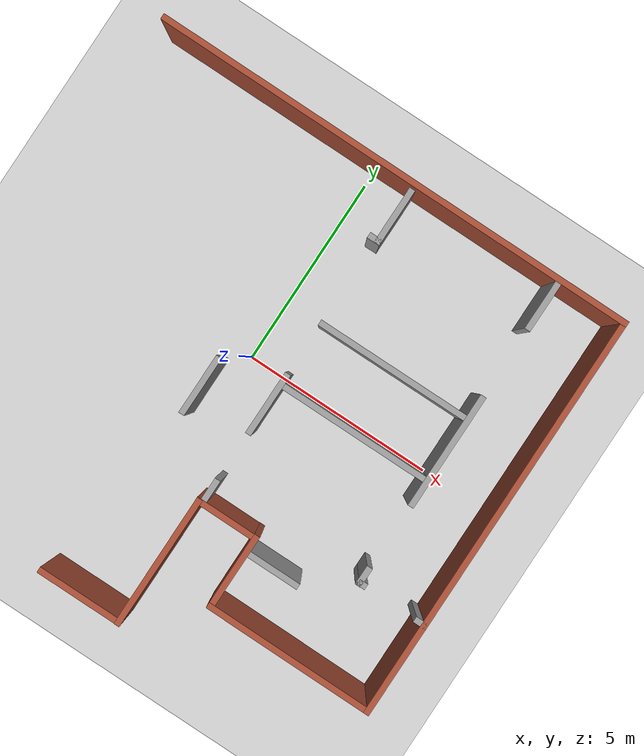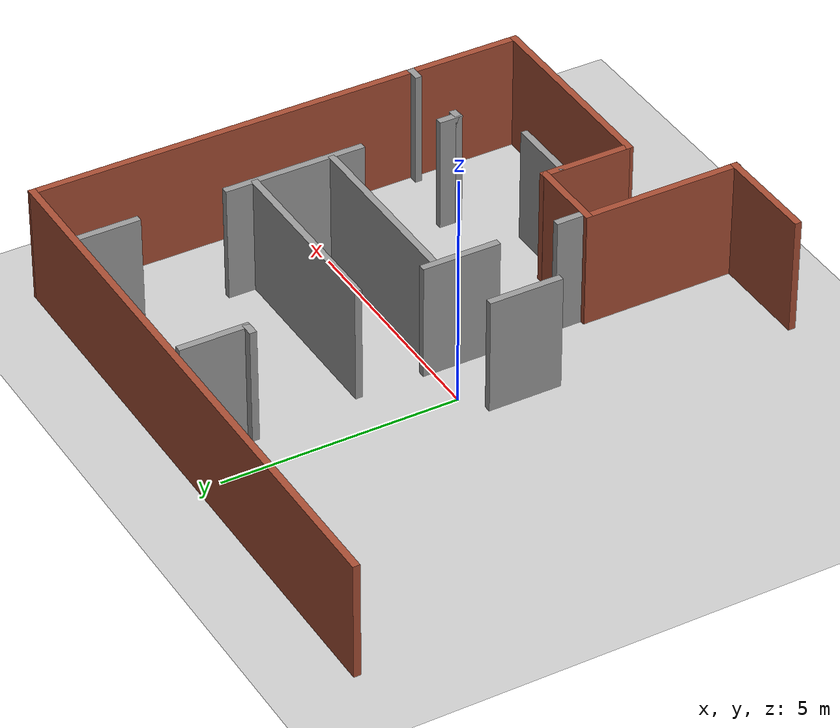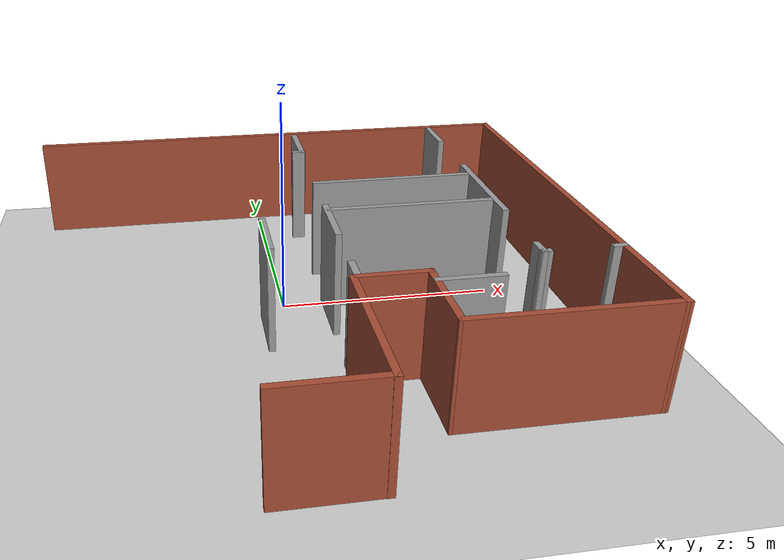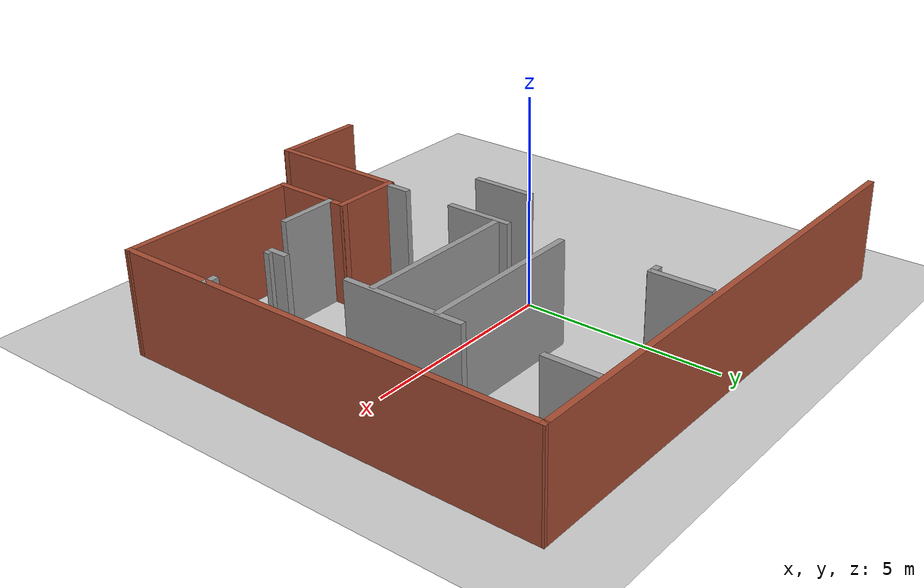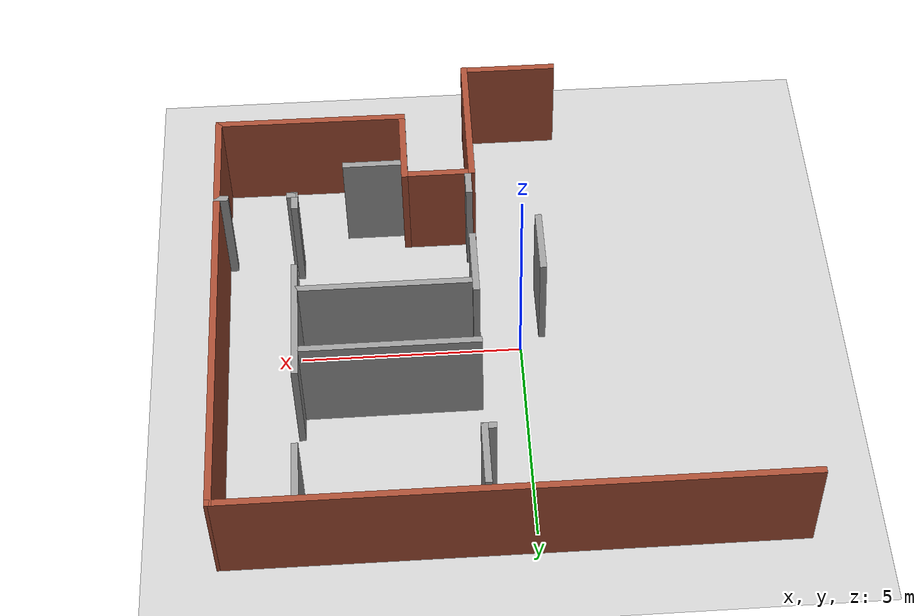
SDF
<sdf version="1.7">
 <world name="default">
  <model name="ground_plane">
   <static>1</static>
   <link name="link">
    <collision name="collision">
     <geometry><plane><normal>0 0 1</normal><size>100 100</size></plane></geometry>
     <surface>
      <contact><collide_bitmask>65535</collide_bitmask></contact>
      <friction><ode><mu>100</mu><mu2>50</mu2></ode></friction>
     </surface>
    </collision>
    <visual name="visual">
     <cast_shadows>0</cast_shadows>
     <geometry><plane><normal>0 0 1</normal><size>100 100</size></plane></geometry>
     <material>
      <script><uri>file://media/materials/scripts/gazebo.material</uri><name>Gazebo/Grey</name></script>
     </material>
    </visual>
   </link>
  </model>
  <model name="Building_2">
   <link name="Wall_0">
    <pose>0.975539 -4.38291 0 0 0 -1.5708</pose>
    <inertial>
     <inertia><ixx>0</ixx><ixy>0</ixy><ixz>0</ixz><iyy>0</iyy><iyz>0</iyz><izz>0</izz></inertia>
     <mass>0</mass>
    </inertial>
    <visual name="Wall_0_Visual">
     <pose>0 0 1.25 0 -0 0</pose>
     <geometry><box><size>3.44775 0.15 2.5</size></box></geometry>
     <material>
      <script><uri>file://media/materials/scripts/gazebo.material</uri><name>Gazebo/Bricks</name></script>
      <ambient>1 1 1 1</ambient>
      <shader type="pixel"/>
     </material>
     <meta><layer>0</layer></meta>
    </visual>
    <collision name="Wall_0_Collision">
     <pose>0 0 1.25 0 -0 0</pose>
     <geometry><box><size>3.44775 0.15 2.5</size></box></geometry>
     <surface>
      <friction>
       <ode><mu>1</mu><mu2>1</mu2><fdir1>0 0 0</fdir1><slip1>0</slip1><slip2>0</slip2></ode>
       <torsional>
        <coefficient>1</coefficient>
        <patch_radius>0</patch_radius>
        <surface_radius>0</surface_radius>
        <use_patch_radius>1</use_patch_radius>
        <ode><slip>0</slip></ode>
       </torsional>
      </friction>
      <bounce><restitution_coefficient>0</restitution_coefficient><threshold>1e+06</threshold></bounce>
      <contact>
       <collide_without_contact>0</collide_without_contact>
       <collide_without_contact_bitmask>1</collide_without_contact_bitmask>
       <collide_bitmask>1</collide_bitmask>
       <ode>
        <soft_cfm>0</soft_cfm>
        <soft_erp>0.2</soft_erp>
        <kp>1e+13</kp>
        <kd>1</kd>
        <max_vel>0.01</max_vel>
        <min_depth>0</min_depth>
       </ode>
       <bullet>
        <split_impulse>1</split_impulse>
        <split_impulse_penetration_threshold>-0.01</split_impulse_penetration_threshold>
        <soft_cfm>0</soft_cfm>
        <soft_erp>0.2</soft_erp>
        <kp>1e+13</kp>
        <kd>1</kd>
       </bullet>
      </contact>
     </surface>
    </collision>
   </link>
   <link name="Wall_1">
    <pose>-0.074462 -6.02302 0 0 -0 3.14159</pose>
    <visual name="Wall_1_Visual">
     <pose>0 0 1.25 0 -0 0</pose>
     <geometry><box><size>2.25 0.15 2.5</size></box></geometry>
     <material>
      <script><uri>file://media/materials/scripts/gazebo.material</uri><name>Gazebo/Bricks</name></script>
      <ambient>1 1 1 1</ambient>
      <shader type="pixel"/>
     </material>
     <meta><layer>0</layer></meta>
    </visual>
    <collision name="Wall_1_Collision">
     <pose>0 0 1.25 0 -0 0</pose>
     <geometry><box><size>2.25 0.15 2.5</size></box></geometry>
     <surface>
      <friction>
       <ode><mu>1</mu><mu2>1</mu2><fdir1>0 0 0</fdir1><slip1>0</slip1><slip2>0</slip2></ode>
       <torsional>
        <coefficient>1</coefficient>
        <patch_radius>0</patch_radius>
        <surface_radius>0</surface_radius>
        <use_patch_radius>1</use_patch_radius>
        <ode><slip>0</slip></ode>
       </torsional>
      </friction>
      <bounce><restitution_coefficient>0</restitution_coefficient><threshold>1e+06</threshold></bounce>
      <contact>
       <collide_without_contact>0</collide_without_contact>
       <collide_without_contact_bitmask>1</collide_without_contact_bitmask>
       <collide_bitmask>1</collide_bitmask>
       <ode>
        <soft_cfm>0</soft_cfm>
        <soft_erp>0.2</soft_erp>
        <kp>1e+13</kp>
        <kd>1</kd>
        <max_vel>0.01</max_vel>
        <min_depth>0</min_depth>
       </ode>
       <bullet>
        <split_impulse>1</split_impulse>
        <split_impulse_penetration_threshold>-0.01</split_impulse_penetration_threshold>
        <soft_cfm>0</soft_cfm>
        <soft_erp>0.2</soft_erp>
        <kp>1e+13</kp>
        <kd>1</kd>
       </bullet>
      </contact>
     </surface>
    </collision>
   </link>
   <link name="Wall_11">
    <pose>0.54984 6.01575 0 0 0 -0.001465</pose>
    <visual name="Wall_11_Visual">
     <pose>0 0 1.25 0 -0 0</pose>
     <geometry><box><size>12.6986 0.15 2.5</size></box></geometry>
     <material>
      <script><uri>file://media/materials/scripts/gazebo.material</uri><name>Gazebo/Bricks</name></script>
      <ambient>1 1 1 1</ambient>
      <shader type="pixel"/>
     </material>
     <meta><layer>0</layer></meta>
    </visual>
    <collision name="Wall_11_Collision">
     <pose>0 0 1.25 0 -0 0</pose>
     <geometry><box><size>12.6986 0.15 2.5</size></box></geometry>
     <surface>
      <friction>
       <ode><mu>1</mu><mu2>1</mu2><fdir1>0 0 0</fdir1><slip1>0</slip1><slip2>0</slip2></ode>
       <torsional>
        <coefficient>1</coefficient>
        <patch_radius>0</patch_radius>
        <surface_radius>0</surface_radius>
        <use_patch_radius>1</use_patch_radius>
        <ode><slip>0</slip></ode>
       </torsional>
      </friction>
      <bounce><restitution_coefficient>0</restitution_coefficient><threshold>1e+06</threshold></bounce>
      <contact>
       <collide_without_contact>0</collide_without_contact>
       <collide_without_contact_bitmask>1</collide_without_contact_bitmask>
       <collide_bitmask>1</collide_bitmask>
       <ode>
        <soft_cfm>0</soft_cfm>
        <soft_erp>0.2</soft_erp>
        <kp>1e+13</kp>
        <kd>1</kd>
        <max_vel>0.01</max_vel>
        <min_depth>0</min_depth>
       </ode>
       <bullet>
        <split_impulse>1</split_impulse>
        <split_impulse_penetration_threshold>-0.01</split_impulse_penetration_threshold>
        <soft_cfm>0</soft_cfm>
        <soft_erp>0.2</soft_erp>
        <kp>1e+13</kp>
        <kd>1</kd>
       </bullet>
      </contact>
     </surface>
    </collision>
   </link>
   <link name="Wall_14">
    <pose>6.82414 0.706559 0 0 0 -1.5708</pose>
    <visual name="Wall_14_Visual">
     <pose>0 0 1.25 0 -0 0</pose>
     <geometry><box><size>10.75 0.15 2.5</size></box></geometry>
     <material>
      <script><uri>file://media/materials/scripts/gazebo.material</uri><name>Gazebo/Bricks</name></script>
      <ambient>1 1 1 1</ambient>
      <shader type="pixel"/>
     </material>
     <meta><layer>0</layer></meta>
    </visual>
    <collision name="Wall_14_Collision">
     <pose>0 0 1.25 0 -0 0</pose>
     <geometry><box><size>10.75 0.15 2.5</size></box></geometry>
     <surface>
      <friction>
       <ode><mu>1</mu><mu2>1</mu2><fdir1>0 0 0</fdir1><slip1>0</slip1><slip2>0</slip2></ode>
       <torsional>
        <coefficient>1</coefficient>
        <patch_radius>0</patch_radius>
        <surface_radius>0</surface_radius>
        <use_patch_radius>1</use_patch_radius>
        <ode><slip>0</slip></ode>
       </torsional>
      </friction>
      <bounce><restitution_coefficient>0</restitution_coefficient><threshold>1e+06</threshold></bounce>
      <contact>
       <collide_without_contact>0</collide_without_contact>
       <collide_without_contact_bitmask>1</collide_without_contact_bitmask>
       <collide_bitmask>1</collide_bitmask>
       <ode>
        <soft_cfm>0</soft_cfm>
        <soft_erp>0.2</soft_erp>
        <kp>1e+13</kp>
        <kd>1</kd>
        <max_vel>0.01</max_vel>
        <min_depth>0</min_depth>
       </ode>
       <bullet>
        <split_impulse>1</split_impulse>
        <split_impulse_penetration_threshold>-0.01</split_impulse_penetration_threshold>
        <soft_cfm>0</soft_cfm>
        <soft_erp>0.2</soft_erp>
        <kp>1e+13</kp>
        <kd>1</kd>
       </bullet>
      </contact>
     </surface>
    </collision>
   </link>
   <link name="Wall_15">
    <pose>4.67484 -4.58425 0 0 -0 3.13732</pose>
    <visual name="Wall_15_Visual">
     <pose>0 0 1.25 0 -0 0</pose>
     <geometry><box><size>4.44864 0.15 2.5</size></box></geometry>
     <material>
      <script><uri>file://media/materials/scripts/gazebo.material</uri><name>Gazebo/Bricks</name></script>
      <ambient>1 1 1 1</ambient>
      <shader type="pixel"/>
     </material>
     <meta><layer>0</layer></meta>
    </visual>
    <collision name="Wall_15_Collision">
     <pose>0 0 1.25 0 -0 0</pose>
     <geometry><box><size>4.44864 0.15 2.5</size></box></geometry>
     <surface>
      <friction>
       <ode><mu>1</mu><mu2>1</mu2><fdir1>0 0 0</fdir1><slip1>0</slip1><slip2>0</slip2></ode>
       <torsional>
        <coefficient>1</coefficient>
        <patch_radius>0</patch_radius>
        <surface_radius>0</surface_radius>
        <use_patch_radius>1</use_patch_radius>
        <ode><slip>0</slip></ode>
       </torsional>
      </friction>
      <bounce><restitution_coefficient>0</restitution_coefficient><threshold>1e+06</threshold></bounce>
      <contact>
       <collide_without_contact>0</collide_without_contact>
       <collide_without_contact_bitmask>1</collide_without_contact_bitmask>
       <collide_bitmask>1</collide_bitmask>
       <ode>
        <soft_cfm>0</soft_cfm>
        <soft_erp>0.2</soft_erp>
        <kp>1e+13</kp>
        <kd>1</kd>
        <max_vel>0.01</max_vel>
        <min_depth>0</min_depth>
       </ode>
       <bullet>
        <split_impulse>1</split_impulse>
        <split_impulse_penetration_threshold>-0.01</split_impulse_penetration_threshold>
        <soft_cfm>0</soft_cfm>
        <soft_erp>0.2</soft_erp>
        <kp>1e+13</kp>
        <kd>1</kd>
       </bullet>
      </contact>
     </surface>
    </collision>
   </link>
   <link name="Wall_16">
    <pose>2.52554 -3.64508 0 0 -0 1.5708</pose>
    <visual name="Wall_16_Visual">
     <pose>0 0 1.25 0 -0 0</pose>
     <geometry><box><size>2.00994 0.15 2.5</size></box></geometry>
     <material>
      <script><uri>file://media/materials/scripts/gazebo.material</uri><name>Gazebo/Bricks</name></script>
      <ambient>1 1 1 1</ambient>
      <shader type="pixel"/>
     </material>
     <meta><layer>0</layer></meta>
    </visual>
    <collision name="Wall_16_Collision">
     <pose>0 0 1.25 0 -0 0</pose>
     <geometry><box><size>2.00994 0.15 2.5</size></box></geometry>
     <surface>
      <friction>
       <ode><mu>1</mu><mu2>1</mu2><fdir1>0 0 0</fdir1><slip1>0</slip1><slip2>0</slip2></ode>
       <torsional>
        <coefficient>1</coefficient>
        <patch_radius>0</patch_radius>
        <surface_radius>0</surface_radius>
        <use_patch_radius>1</use_patch_radius>
        <ode><slip>0</slip></ode>
       </torsional>
      </friction>
      <bounce><restitution_coefficient>0</restitution_coefficient><threshold>1e+06</threshold></bounce>
      <contact>
       <collide_without_contact>0</collide_without_contact>
       <collide_without_contact_bitmask>1</collide_without_contact_bitmask>
       <collide_bitmask>1</collide_bitmask>
       <ode>
        <soft_cfm>0</soft_cfm>
        <soft_erp>0.2</soft_erp>
        <kp>1e+13</kp>
        <kd>1</kd>
        <max_vel>0.01</max_vel>
        <min_depth>0</min_depth>
       </ode>
       <bullet>
        <split_impulse>1</split_impulse>
        <split_impulse_penetration_threshold>-0.01</split_impulse_penetration_threshold>
        <soft_cfm>0</soft_cfm>
        <soft_erp>0.2</soft_erp>
        <kp>1e+13</kp>
        <kd>1</kd>
       </bullet>
      </contact>
     </surface>
    </collision>
   </link>
   <link name="Wall_17">
    <pose>1.75059 -2.71926 0 0 -0 3.14053</pose>
    <visual name="Wall_17_Visual">
     <pose>0 0 1.25 0 -0 0</pose>
     <geometry><box><size>1.69991 0.15 2.5</size></box></geometry>
     <material>
      <script><uri>file://media/materials/scripts/gazebo.material</uri><name>Gazebo/Bricks</name></script>
      <ambient>1 1 1 1</ambient>
      <shader type="pixel"/>
     </material>
     <meta><layer>0</layer></meta>
    </visual>
    <collision name="Wall_17_Collision">
     <pose>0 0 1.25 0 -0 0</pose>
     <geometry><box><size>1.69991 0.15 2.5</size></box></geometry>
     <surface>
      <friction>
       <ode><mu>1</mu><mu2>1</mu2><fdir1>0 0 0</fdir1><slip1>0</slip1><slip2>0</slip2></ode>
       <torsional>
        <coefficient>1</coefficient>
        <patch_radius>0</patch_radius>
        <surface_radius>0</surface_radius>
        <use_patch_radius>1</use_patch_radius>
        <ode><slip>0</slip></ode>
       </torsional>
      </friction>
      <bounce><restitution_coefficient>0</restitution_coefficient><threshold>1e+06</threshold></bounce>
      <contact>
       <collide_without_contact>0</collide_without_contact>
       <collide_without_contact_bitmask>1</collide_without_contact_bitmask>
       <collide_bitmask>1</collide_bitmask>
       <ode>
        <soft_cfm>0</soft_cfm>
        <soft_erp>0.2</soft_erp>
        <kp>1e+13</kp>
        <kd>1</kd>
        <max_vel>0.01</max_vel>
        <min_depth>0</min_depth>
       </ode>
       <bullet>
        <split_impulse>1</split_impulse>
        <split_impulse_penetration_threshold>-0.01</split_impulse_penetration_threshold>
        <soft_cfm>0</soft_cfm>
        <soft_erp>0.2</soft_erp>
        <kp>1e+13</kp>
        <kd>1</kd>
       </bullet>
      </contact>
     </surface>
    </collision>
   </link>
   <link name="Wall_33">
    <pose>-0.445665 -0.504153 0 0 0 -1.5708</pose>
    <inertial>
     <inertia><ixx>0</ixx><ixy>0</ixy><ixz>0</ixz><iyy>0</iyy><iyz>0</iyz><izz>0</izz></inertia>
     <mass>0</mass>
    </inertial>
    <visual name="Wall_33_Visual">
     <pose>0 0 1.25 0 -0 0</pose>
     <geometry><box><size>1.56049 0.15 2.5</size></box></geometry>
     <material>
      <script><uri>file://media/materials/scripts/gazebo.material</uri><name>Gazebo/Grey</name></script>
      <ambient>1 1 1 1</ambient>
      <shader type="pixel"/>
     </material>
     <meta><layer>0</layer></meta>
    </visual>
    <collision name="Wall_33_Collision">
     <pose>0 0 1.25 0 -0 0</pose>
     <geometry><box><size>1.56049 0.15 2.5</size></box></geometry>
     <surface>
      <friction>
       <ode><mu>1</mu><mu2>1</mu2><fdir1>0 0 0</fdir1><slip1>0</slip1><slip2>0</slip2></ode>
       <torsional>
        <coefficient>1</coefficient>
        <patch_radius>0</patch_radius>
        <surface_radius>0</surface_radius>
        <use_patch_radius>1</use_patch_radius>
        <ode><slip>0</slip></ode>
       </torsional>
      </friction>
      <bounce><restitution_coefficient>0</restitution_coefficient><threshold>1e+06</threshold></bounce>
      <contact>
       <collide_without_contact>0</collide_without_contact>
       <collide_without_contact_bitmask>1</collide_without_contact_bitmask>
       <collide_bitmask>1</collide_bitmask>
       <ode>
        <soft_cfm>0</soft_cfm>
        <soft_erp>0.2</soft_erp>
        <kp>1e+13</kp>
        <kd>1</kd>
        <max_vel>0.01</max_vel>
        <min_depth>0</min_depth>
       </ode>
       <bullet>
        <split_impulse>1</split_impulse>
        <split_impulse_penetration_threshold>-0.01</split_impulse_penetration_threshold>
        <soft_cfm>0</soft_cfm>
        <soft_erp>0.2</soft_erp>
        <kp>1e+13</kp>
        <kd>1</kd>
       </bullet>
      </contact>
     </surface>
    </collision>
   </link>
   <link name="Wall_56">
    <pose>1.11993 5.13763 0 0 0 -1.5708</pose>
    <inertial>
     <inertia><ixx>0</ixx><ixy>0</ixy><ixz>0</ixz><iyy>0</iyy><iyz>0</iyz><izz>0</izz></inertia>
     <mass>0</mass>
    </inertial>
    <visual name="Wall_56_Visual">
     <pose>0 0 1.25 0 -0 0</pose>
     <geometry><box><size>1.48421 0.15 2.5</size></box></geometry>
     <material>
      <script><uri>file://media/materials/scripts/gazebo.material</uri><name>Gazebo/Grey</name></script>
      <ambient>1 1 1 1</ambient>
      <shader type="pixel"/>
     </material>
     <meta><layer>0</layer></meta>
    </visual>
    <collision name="Wall_56_Collision">
     <pose>0 0 1.25 0 -0 0</pose>
     <geometry><box><size>1.48421 0.15 2.5</size></box></geometry>
     <surface>
      <friction>
       <ode><mu>1</mu><mu2>1</mu2><fdir1>0 0 0</fdir1><slip1>0</slip1><slip2>0</slip2></ode>
       <torsional>
        <coefficient>1</coefficient>
        <patch_radius>0</patch_radius>
        <surface_radius>0</surface_radius>
        <use_patch_radius>1</use_patch_radius>
        <ode><slip>0</slip></ode>
       </torsional>
      </friction>
      <bounce><restitution_coefficient>0</restitution_coefficient><threshold>1e+06</threshold></bounce>
      <contact>
       <collide_without_contact>0</collide_without_contact>
       <collide_without_contact_bitmask>1</collide_without_contact_bitmask>
       <collide_bitmask>1</collide_bitmask>
       <ode>
        <soft_cfm>0</soft_cfm>
        <soft_erp>0.2</soft_erp>
        <kp>1e+13</kp>
        <kd>1</kd>
        <max_vel>0.01</max_vel>
        <min_depth>0</min_depth>
       </ode>
       <bullet>
        <split_impulse>1</split_impulse>
        <split_impulse_penetration_threshold>-0.01</split_impulse_penetration_threshold>
        <soft_cfm>0</soft_cfm>
        <soft_erp>0.2</soft_erp>
        <kp>1e+13</kp>
        <kd>1</kd>
       </bullet>
      </contact>
     </surface>
    </collision>
   </link>
   <link name="Wall_60">
    <pose>1.02699 4.46378 0 0 -0 3.14159</pose>
    <visual name="Wall_60_Visual">
     <pose>0 0 1.25 0 -0 0</pose>
     <geometry><box><size>0.32984 0.15 2.5</size></box></geometry>
     <material>
      <script><uri>file://media/materials/scripts/gazebo.material</uri><name>Gazebo/Grey</name></script>
      <ambient>1 1 1 1</ambient>
      <shader type="pixel"/>
     </material>
     <meta><layer>0</layer></meta>
    </visual>
    <collision name="Wall_60_Collision">
     <pose>0 0 1.25 0 -0 0</pose>
     <geometry><box><size>0.32984 0.15 2.5</size></box></geometry>
     <surface>
      <friction>
       <ode><mu>1</mu><mu2>1</mu2><fdir1>0 0 0</fdir1><slip1>0</slip1><slip2>0</slip2></ode>
       <torsional>
        <coefficient>1</coefficient>
        <patch_radius>0</patch_radius>
        <surface_radius>0</surface_radius>
        <use_patch_radius>1</use_patch_radius>
        <ode><slip>0</slip></ode>
       </torsional>
      </friction>
      <bounce><restitution_coefficient>0</restitution_coefficient><threshold>1e+06</threshold></bounce>
      <contact>
       <collide_without_contact>0</collide_without_contact>
       <collide_without_contact_bitmask>1</collide_without_contact_bitmask>
       <collide_bitmask>1</collide_bitmask>
       <ode>
        <soft_cfm>0</soft_cfm>
        <soft_erp>0.2</soft_erp>
        <kp>1e+13</kp>
        <kd>1</kd>
        <max_vel>0.01</max_vel>
        <min_depth>0</min_depth>
       </ode>
       <bullet>
        <split_impulse>1</split_impulse>
        <split_impulse_penetration_threshold>-0.01</split_impulse_penetration_threshold>
        <soft_cfm>0</soft_cfm>
        <soft_erp>0.2</soft_erp>
        <kp>1e+13</kp>
        <kd>1</kd>
       </bullet>
      </contact>
     </surface>
    </collision>
   </link>
   <link name="Wall_66">
    <pose>1.07407 -0.005905 0 0 0 -1.5708</pose>
    <inertial>
     <inertia><ixx>0</ixx><ixy>0</ixy><ixz>0</ixz><iyy>0</iyy><iyz>0</iyz><izz>0</izz></inertia>
     <mass>0</mass>
    </inertial>
    <visual name="Wall_66_Visual">
     <pose>0 0 1.25 0 -0 0</pose>
     <geometry><box><size>1.65535 0.15 2.5</size></box></geometry>
     <material>
      <script><uri>file://media/materials/scripts/gazebo.material</uri><name>Gazebo/Grey</name></script>
      <ambient>1 1 1 1</ambient>
      <shader type="pixel"/>
     </material>
     <meta><layer>0</layer></meta>
    </visual>
    <collision name="Wall_66_Collision">
     <pose>0 0 1.25 0 -0 0</pose>
     <geometry><box><size>1.65535 0.15 2.5</size></box></geometry>
     <surface>
      <friction>
       <ode><mu>1</mu><mu2>1</mu2><fdir1>0 0 0</fdir1><slip1>0</slip1><slip2>0</slip2></ode>
       <torsional>
        <coefficient>1</coefficient>
        <patch_radius>0</patch_radius>
        <surface_radius>0</surface_radius>
        <use_patch_radius>1</use_patch_radius>
        <ode><slip>0</slip></ode>
       </torsional>
      </friction>
      <bounce><restitution_coefficient>0</restitution_coefficient><threshold>1e+06</threshold></bounce>
      <contact>
       <collide_without_contact>0</collide_without_contact>
       <collide_without_contact_bitmask>1</collide_without_contact_bitmask>
       <collide_bitmask>1</collide_bitmask>
       <ode>
        <soft_cfm>0</soft_cfm>
        <soft_erp>0.2</soft_erp>
        <kp>1e+13</kp>
        <kd>1</kd>
        <max_vel>0.01</max_vel>
        <min_depth>0</min_depth>
       </ode>
       <bullet>
        <split_impulse>1</split_impulse>
        <split_impulse_penetration_threshold>-0.01</split_impulse_penetration_threshold>
        <soft_cfm>0</soft_cfm>
        <soft_erp>0.2</soft_erp>
        <kp>1e+13</kp>
        <kd>1</kd>
       </bullet>
      </contact>
     </surface>
    </collision>
   </link>
   <link name="Wall_74">
    <pose>1.07029 -2.36085 0 0 0 -1.5708</pose>
    <inertial>
     <inertia><ixx>0</ixx><ixy>0</ixy><ixz>0</ixz><iyy>0</iyy><iyz>0</iyz><izz>0</izz></inertia>
     <mass>0</mass>
    </inertial>
    <visual name="Wall_74_Visual">
     <pose>0 0 1.25 0 -0 0</pose>
     <geometry><box><size>0.57988 0.15 2.5</size></box></geometry>
     <material>
      <script><uri>file://media/materials/scripts/gazebo.material</uri><name>Gazebo/Grey</name></script>
      <ambient>1 1 1 1</ambient>
      <shader type="pixel"/>
     </material>
     <meta><layer>0</layer></meta>
    </visual>
    <collision name="Wall_74_Collision">
     <pose>0 0 1.25 0 -0 0</pose>
     <geometry><box><size>0.57988 0.15 2.5</size></box></geometry>
     <surface>
      <friction>
       <ode><mu>1</mu><mu2>1</mu2><fdir1>0 0 0</fdir1><slip1>0</slip1><slip2>0</slip2></ode>
       <torsional>
        <coefficient>1</coefficient>
        <patch_radius>0</patch_radius>
        <surface_radius>0</surface_radius>
        <use_patch_radius>1</use_patch_radius>
        <ode><slip>0</slip></ode>
       </torsional>
      </friction>
      <bounce><restitution_coefficient>0</restitution_coefficient><threshold>1e+06</threshold></bounce>
      <contact>
       <collide_without_contact>0</collide_without_contact>
       <collide_without_contact_bitmask>1</collide_without_contact_bitmask>
       <collide_bitmask>1</collide_bitmask>
       <ode>
        <soft_cfm>0</soft_cfm>
        <soft_erp>0.2</soft_erp>
        <kp>1e+13</kp>
        <kd>1</kd>
        <max_vel>0.01</max_vel>
        <min_depth>0</min_depth>
       </ode>
       <bullet>
        <split_impulse>1</split_impulse>
        <split_impulse_penetration_threshold>-0.01</split_impulse_penetration_threshold>
        <soft_cfm>0</soft_cfm>
        <soft_erp>0.2</soft_erp>
        <kp>1e+13</kp>
        <kd>1</kd>
       </bullet>
      </contact>
     </surface>
    </collision>
   </link>
   <link name="Wall_76">
    <pose>5.06548 5.29174 0 0 0 -1.5708</pose>
    <inertial>
     <inertia><ixx>0</ixx><ixy>0</ixy><ixz>0</ixz><iyy>0</iyy><iyz>0</iyz><izz>0</izz></inertia>
     <mass>0</mass>
    </inertial>
    <visual name="Wall_76_Visual">
     <pose>0 0 1.25 0 -0 0</pose>
     <geometry><box><size>1.28814 0.15 2.5</size></box></geometry>
     <material>
      <script><uri>file://media/materials/scripts/gazebo.material</uri><name>Gazebo/Grey</name></script>
      <ambient>1 1 1 1</ambient>
      <shader type="pixel"/>
     </material>
     <meta><layer>0</layer></meta>
    </visual>
    <collision name="Wall_76_Collision">
     <pose>0 0 1.25 0 -0 0</pose>
     <geometry><box><size>1.28814 0.15 2.5</size></box></geometry>
     <surface>
      <friction>
       <ode><mu>1</mu><mu2>1</mu2><fdir1>0 0 0</fdir1><slip1>0</slip1><slip2>0</slip2></ode>
       <torsional>
        <coefficient>1</coefficient>
        <patch_radius>0</patch_radius>
        <surface_radius>0</surface_radius>
        <use_patch_radius>1</use_patch_radius>
        <ode><slip>0</slip></ode>
       </torsional>
      </friction>
      <bounce><restitution_coefficient>0</restitution_coefficient><threshold>1e+06</threshold></bounce>
      <contact>
       <collide_without_contact>0</collide_without_contact>
       <collide_without_contact_bitmask>1</collide_without_contact_bitmask>
       <collide_bitmask>1</collide_bitmask>
       <ode>
        <soft_cfm>0</soft_cfm>
        <soft_erp>0.2</soft_erp>
        <kp>1e+13</kp>
        <kd>1</kd>
        <max_vel>0.01</max_vel>
        <min_depth>0</min_depth>
       </ode>
       <bullet>
        <split_impulse>1</split_impulse>
        <split_impulse_penetration_threshold>-0.01</split_impulse_penetration_threshold>
        <soft_cfm>0</soft_cfm>
        <soft_erp>0.2</soft_erp>
        <kp>1e+13</kp>
        <kd>1</kd>
       </bullet>
      </contact>
     </surface>
    </collision>
   </link>
   <link name="Wall_78">
    <pose>5.06799 1.33817 0 0 0 -1.5708</pose>
    <inertial>
     <inertia><ixx>0</ixx><ixy>0</ixy><ixz>0</ixz><iyy>0</iyy><iyz>0</iyz><izz>0</izz></inertia>
     <mass>0</mass>
    </inertial>
    <visual name="Wall_78_Visual">
     <pose>0 0 1.25 0 -0 0</pose>
     <geometry><box><size>3.01399 0.15 2.5</size></box></geometry>
     <material>
      <script><uri>file://media/materials/scripts/gazebo.material</uri><name>Gazebo/Grey</name></script>
      <ambient>1 1 1 1</ambient>
      <shader type="pixel"/>
     </material>
     <meta><layer>0</layer></meta>
    </visual>
    <collision name="Wall_78_Collision">
     <pose>0 0 1.25 0 -0 0</pose>
     <geometry><box><size>3.01399 0.15 2.5</size></box></geometry>
     <surface>
      <friction>
       <ode><mu>1</mu><mu2>1</mu2><fdir1>0 0 0</fdir1><slip1>0</slip1><slip2>0</slip2></ode>
       <torsional>
        <coefficient>1</coefficient>
        <patch_radius>0</patch_radius>
        <surface_radius>0</surface_radius>
        <use_patch_radius>1</use_patch_radius>
        <ode><slip>0</slip></ode>
       </torsional>
      </friction>
      <bounce><restitution_coefficient>0</restitution_coefficient><threshold>1e+06</threshold></bounce>
      <contact>
       <collide_without_contact>0</collide_without_contact>
       <collide_without_contact_bitmask>1</collide_without_contact_bitmask>
       <collide_bitmask>1</collide_bitmask>
       <ode>
        <soft_cfm>0</soft_cfm>
        <soft_erp>0.2</soft_erp>
        <kp>1e+13</kp>
        <kd>1</kd>
        <max_vel>0.01</max_vel>
        <min_depth>0</min_depth>
       </ode>
       <bullet>
        <split_impulse>1</split_impulse>
        <split_impulse_penetration_threshold>-0.01</split_impulse_penetration_threshold>
        <soft_cfm>0</soft_cfm>
        <soft_erp>0.2</soft_erp>
        <kp>1e+13</kp>
        <kd>1</kd>
       </bullet>
      </contact>
     </surface>
    </collision>
   </link>
   <link name="Wall_85">
    <pose>3.05695 2.19305 0 0 0 -3.1394</pose>
    <visual name="Wall_85_Visual">
     <pose>0 0 1.25 0 -0 0</pose>
     <geometry><box><size>4.05699 0.15 2.5</size></box></geometry>
     <material>
      <script><uri>file://media/materials/scripts/gazebo.material</uri><name>Gazebo/Grey</name></script>
      <ambient>1 1 1 1</ambient>
      <shader type="pixel"/>
     </material>
     <meta><layer>0</layer></meta>
    </visual>
    <collision name="Wall_85_Collision">
     <pose>0 0 1.25 0 -0 0</pose>
     <geometry><box><size>4.05699 0.15 2.5</size></box></geometry>
     <surface>
      <friction>
       <ode><mu>1</mu><mu2>1</mu2><fdir1>0 0 0</fdir1><slip1>0</slip1><slip2>0</slip2></ode>
       <torsional>
        <coefficient>1</coefficient>
        <patch_radius>0</patch_radius>
        <surface_radius>0</surface_radius>
        <use_patch_radius>1</use_patch_radius>
        <ode><slip>0</slip></ode>
       </torsional>
      </friction>
      <bounce><restitution_coefficient>0</restitution_coefficient><threshold>1e+06</threshold></bounce>
      <contact>
       <collide_without_contact>0</collide_without_contact>
       <collide_without_contact_bitmask>1</collide_without_contact_bitmask>
       <collide_bitmask>1</collide_bitmask>
       <ode>
        <soft_cfm>0</soft_cfm>
        <soft_erp>0.2</soft_erp>
        <kp>1e+13</kp>
        <kd>1</kd>
        <max_vel>0.01</max_vel>
        <min_depth>0</min_depth>
       </ode>
       <bullet>
        <split_impulse>1</split_impulse>
        <split_impulse_penetration_threshold>-0.01</split_impulse_penetration_threshold>
        <soft_cfm>0</soft_cfm>
        <soft_erp>0.2</soft_erp>
        <kp>1e+13</kp>
        <kd>1</kd>
       </bullet>
      </contact>
     </surface>
    </collision>
   </link>
   <link name="Wall_87">
    <pose>3.06404 0.525185 0 0 -0 3.14159</pose>
    <visual name="Wall_87_Visual">
     <pose>0 0 1.25 0 -0 0</pose>
     <geometry><box><size>4 0.15 2.5</size></box></geometry>
     <material>
      <script><uri>file://media/materials/scripts/gazebo.material</uri><name>Gazebo/Grey</name></script>
      <ambient>1 1 1 1</ambient>
      <shader type="pixel"/>
     </material>
     <meta><layer>0</layer></meta>
    </visual>
    <collision name="Wall_87_Collision">
     <pose>0 0 1.25 0 -0 0</pose>
     <geometry><box><size>4 0.15 2.5</size></box></geometry>
     <surface>
      <friction>
       <ode><mu>1</mu><mu2>1</mu2><fdir1>0 0 0</fdir1><slip1>0</slip1><slip2>0</slip2></ode>
       <torsional>
        <coefficient>1</coefficient>
        <patch_radius>0</patch_radius>
        <surface_radius>0</surface_radius>
        <use_patch_radius>1</use_patch_radius>
        <ode><slip>0</slip></ode>
       </torsional>
      </friction>
      <bounce><restitution_coefficient>0</restitution_coefficient><threshold>1e+06</threshold></bounce>
      <contact>
       <collide_without_contact>0</collide_without_contact>
       <collide_without_contact_bitmask>1</collide_without_contact_bitmask>
       <collide_bitmask>1</collide_bitmask>
       <ode>
        <soft_cfm>0</soft_cfm>
        <soft_erp>0.2</soft_erp>
        <kp>1e+13</kp>
        <kd>1</kd>
        <max_vel>0.01</max_vel>
        <min_depth>0</min_depth>
       </ode>
       <bullet>
        <split_impulse>1</split_impulse>
        <split_impulse_penetration_threshold>-0.01</split_impulse_penetration_threshold>
        <soft_cfm>0</soft_cfm>
        <soft_erp>0.2</soft_erp>
        <kp>1e+13</kp>
        <kd>1</kd>
       </bullet>
      </contact>
     </surface>
    </collision>
   </link>
   <link name="Wall_89">
    <pose>6.72474 -2.24919 0 0 -0 3.14159</pose>
    <inertial>
     <inertia><ixx>0</ixx><ixy>0</ixy><ixz>0</ixz><iyy>0</iyy><iyz>0</iyz><izz>0</izz></inertia>
     <mass>0</mass>
    </inertial>
    <visual name="Wall_89_Visual">
     <pose>0 0 1.25 0 -0 0</pose>
     <geometry><box><size>0.333129 0.15 2.5</size></box></geometry>
     <material>
      <script><uri>file://media/materials/scripts/gazebo.material</uri><name>Gazebo/Grey</name></script>
      <ambient>1 1 1 1</ambient>
      <shader type="pixel"/>
     </material>
     <meta><layer>0</layer></meta>
    </visual>
    <collision name="Wall_89_Collision">
     <pose>0 0 1.25 0 -0 0</pose>
     <geometry><box><size>0.333129 0.15 2.5</size></box></geometry>
     <surface>
      <friction>
       <ode><mu>1</mu><mu2>1</mu2><fdir1>0 0 0</fdir1><slip1>0</slip1><slip2>0</slip2></ode>
       <torsional>
        <coefficient>1</coefficient>
        <patch_radius>0</patch_radius>
        <surface_radius>0</surface_radius>
        <use_patch_radius>1</use_patch_radius>
        <ode><slip>0</slip></ode>
       </torsional>
      </friction>
      <bounce><restitution_coefficient>0</restitution_coefficient><threshold>1e+06</threshold></bounce>
      <contact>
       <collide_without_contact>0</collide_without_contact>
       <collide_without_contact_bitmask>1</collide_without_contact_bitmask>
       <collide_bitmask>1</collide_bitmask>
       <ode>
        <soft_cfm>0</soft_cfm>
        <soft_erp>0.2</soft_erp>
        <kp>1e+13</kp>
        <kd>1</kd>
        <max_vel>0.01</max_vel>
        <min_depth>0</min_depth>
       </ode>
       <bullet>
        <split_impulse>1</split_impulse>
        <split_impulse_penetration_threshold>-0.01</split_impulse_penetration_threshold>
        <soft_cfm>0</soft_cfm>
        <soft_erp>0.2</soft_erp>
        <kp>1e+13</kp>
        <kd>1</kd>
       </bullet>
      </contact>
     </surface>
    </collision>
   </link>
   <link name="Wall_91">
    <pose>5.13015 -2.24851 0 0 -0 3.14159</pose>
    <inertial>
     <inertia><ixx>0</ixx><ixy>0</ixy><ixz>0</ixz><iyy>0</iyy><iyz>0</iyz><izz>0</izz></inertia>
     <mass>0</mass>
    </inertial>
    <visual name="Wall_91_Visual">
     <pose>0 0 1.25 0 -0 0</pose>
     <geometry><box><size>0.212747 0.15 2.5</size></box></geometry>
     <material>
      <script><uri>file://media/materials/scripts/gazebo.material</uri><name>Gazebo/Grey</name></script>
      <ambient>1 1 1 1</ambient>
      <shader type="pixel"/>
     </material>
     <meta><layer>0</layer></meta>
    </visual>
    <collision name="Wall_91_Collision">
     <pose>0 0 1.25 0 -0 0</pose>
     <geometry><box><size>0.212747 0.15 2.5</size></box></geometry>
     <surface>
      <friction>
       <ode><mu>1</mu><mu2>1</mu2><fdir1>0 0 0</fdir1><slip1>0</slip1><slip2>0</slip2></ode>
       <torsional>
        <coefficient>1</coefficient>
        <patch_radius>0</patch_radius>
        <surface_radius>0</surface_radius>
        <use_patch_radius>1</use_patch_radius>
        <ode><slip>0</slip></ode>
       </torsional>
      </friction>
      <bounce><restitution_coefficient>0</restitution_coefficient><threshold>1e+06</threshold></bounce>
      <contact>
       <collide_without_contact>0</collide_without_contact>
       <collide_without_contact_bitmask>1</collide_without_contact_bitmask>
       <collide_bitmask>1</collide_bitmask>
       <ode>
        <soft_cfm>0</soft_cfm>
        <soft_erp>0.2</soft_erp>
        <kp>1e+13</kp>
        <kd>1</kd>
        <max_vel>0.01</max_vel>
        <min_depth>0</min_depth>
       </ode>
       <bullet>
        <split_impulse>1</split_impulse>
        <split_impulse_penetration_threshold>-0.01</split_impulse_penetration_threshold>
        <soft_cfm>0</soft_cfm>
        <soft_erp>0.2</soft_erp>
        <kp>1e+13</kp>
        <kd>1</kd>
       </bullet>
      </contact>
     </surface>
    </collision>
   </link>
   <link name="Wall_92">
    <pose>5.05842 -2.07828 0 0 -0 1.5708</pose>
    <visual name="Wall_92_Visual">
     <pose>0 0 1.25 0 -0 0</pose>
     <geometry><box><size>0.5 0.15 2.5</size></box></geometry>
     <material>
      <script><uri>file://media/materials/scripts/gazebo.material</uri><name>Gazebo/Grey</name></script>
      <ambient>1 1 1 1</ambient>
      <shader type="pixel"/>
     </material>
     <meta><layer>0</layer></meta>
    </visual>
    <collision name="Wall_92_Collision">
     <pose>0 0 1.25 0 -0 0</pose>
     <geometry><box><size>0.5 0.15 2.5</size></box></geometry>
     <surface>
      <friction>
       <ode><mu>1</mu><mu2>1</mu2><fdir1>0 0 0</fdir1><slip1>0</slip1><slip2>0</slip2></ode>
       <torsional>
        <coefficient>1</coefficient>
        <patch_radius>0</patch_radius>
        <surface_radius>0</surface_radius>
        <use_patch_radius>1</use_patch_radius>
        <ode><slip>0</slip></ode>
       </torsional>
      </friction>
      <bounce><restitution_coefficient>0</restitution_coefficient><threshold>1e+06</threshold></bounce>
      <contact>
       <collide_without_contact>0</collide_without_contact>
       <collide_without_contact_bitmask>1</collide_without_contact_bitmask>
       <collide_bitmask>1</collide_bitmask>
       <ode>
        <soft_cfm>0</soft_cfm>
        <soft_erp>0.2</soft_erp>
        <kp>1e+13</kp>
        <kd>1</kd>
        <max_vel>0.01</max_vel>
        <min_depth>0</min_depth>
       </ode>
       <bullet>
        <split_impulse>1</split_impulse>
        <split_impulse_penetration_threshold>-0.01</split_impulse_penetration_threshold>
        <soft_cfm>0</soft_cfm>
        <soft_erp>0.2</soft_erp>
        <kp>1e+13</kp>
        <kd>1</kd>
       </bullet>
      </contact>
     </surface>
    </collision>
   </link>
   <link name="Wall_94">
    <pose>5.05842 -2.25328 0 0 -0 0</pose>
    <visual name="Wall_94_Visual">
     <pose>0 0 1.25 0 -0 0</pose>
     <geometry><box><size>0.15 0.15 2.5</size></box></geometry>
     <material>
      <script><uri>file://media/materials/scripts/gazebo.material</uri><name>Gazebo/Grey</name></script>
      <ambient>1 1 1 1</ambient>
      <shader type="pixel"/>
     </material>
     <meta><layer>0</layer></meta>
    </visual>
    <collision name="Wall_94_Collision">
     <pose>0 0 1.25 0 -0 0</pose>
     <geometry><box><size>0.15 0.15 2.5</size></box></geometry>
     <surface>
      <friction>
       <ode><mu>1</mu><mu2>1</mu2><fdir1>0 0 0</fdir1><slip1>0</slip1><slip2>0</slip2></ode>
       <torsional>
        <coefficient>1</coefficient>
        <patch_radius>0</patch_radius>
        <surface_radius>0</surface_radius>
        <use_patch_radius>1</use_patch_radius>
        <ode><slip>0</slip></ode>
       </torsional>
      </friction>
      <bounce><restitution_coefficient>0</restitution_coefficient><threshold>1e+06</threshold></bounce>
      <contact>
       <collide_without_contact>0</collide_without_contact>
       <collide_without_contact_bitmask>1</collide_without_contact_bitmask>
       <collide_bitmask>1</collide_bitmask>
       <ode>
        <soft_cfm>0</soft_cfm>
        <soft_erp>0.2</soft_erp>
        <kp>1e+13</kp>
        <kd>1</kd>
        <max_vel>0.01</max_vel>
        <min_depth>0</min_depth>
       </ode>
       <bullet>
        <split_impulse>1</split_impulse>
        <split_impulse_penetration_threshold>-0.01</split_impulse_penetration_threshold>
        <soft_cfm>0</soft_cfm>
        <soft_erp>0.2</soft_erp>
        <kp>1e+13</kp>
        <kd>1</kd>
       </bullet>
      </contact>
     </surface>
    </collision>
   </link>
   <link name="Wall_99">
    <pose>3.20998 -3.09663 0 0 -0 0</pose>
    <inertial>
     <inertia><ixx>0</ixx><ixy>0</ixy><ixz>0</ixz><iyy>0</iyy><iyz>0</iyz><izz>0</izz></inertia>
     <mass>0</mass>
    </inertial>
    <visual name="Wall_99_Visual">
     <pose>0 0 1.25 0 -0 0</pose>
     <geometry><box><size>1.47 0.15 2.5</size></box></geometry>
     <material>
      <script><uri>file://media/materials/scripts/gazebo.material</uri><name>Gazebo/Grey</name></script>
      <ambient>1 1 1 1</ambient>
      <shader type="pixel"/>
     </material>
     <meta><layer>0</layer></meta>
    </visual>
    <collision name="Wall_99_Collision">
     <pose>0 0 1.25 0 -0 0</pose>
     <geometry><box><size>1.47 0.15 2.5</size></box></geometry>
     <surface>
      <friction>
       <ode><mu>1</mu><mu2>1</mu2><fdir1>0 0 0</fdir1><slip1>0</slip1><slip2>0</slip2></ode>
       <torsional>
        <coefficient>1</coefficient>
        <patch_radius>0</patch_radius>
        <surface_radius>0</surface_radius>
        <use_patch_radius>1</use_patch_radius>
        <ode><slip>0</slip></ode>
       </torsional>
      </friction>
      <bounce><restitution_coefficient>0</restitution_coefficient><threshold>1e+06</threshold></bounce>
      <contact>
       <collide_without_contact>0</collide_without_contact>
       <collide_without_contact_bitmask>1</collide_without_contact_bitmask>
       <collide_bitmask>1</collide_bitmask>
       <ode>
        <soft_cfm>0</soft_cfm>
        <soft_erp>0.2</soft_erp>
        <kp>1e+13</kp>
        <kd>1</kd>
        <max_vel>0.01</max_vel>
        <min_depth>0</min_depth>
       </ode>
       <bullet>
        <split_impulse>1</split_impulse>
        <split_impulse_penetration_threshold>-0.01</split_impulse_penetration_threshold>
        <soft_cfm>0</soft_cfm>
        <soft_erp>0.2</soft_erp>
        <kp>1e+13</kp>
        <kd>1</kd>
       </bullet>
      </contact>
     </surface>
    </collision>
   </link>
   <static>1</static>
   <pose>-0.067383 -0.61416 0 0 -0 0</pose>
  </model>
  <model name="marker26_8cm">
   <static>0</static>
   <link name="marker">
    <visual name="visual">
     <geometry><box><size>0.27 0.27 0.001</size></box></geometry>
     <material>
      <script>
       <uri>model://marker26_8cm_massless/material/scripts</uri>
       <uri>model://marker26_8cm_massless/material/textures</uri>
       <name>Aruco/marker26_8cm</name>
      </script>
     </material>
    </visual>
    <collision name="collision"><geometry><box><size>0.09 0.09 0.02</size></box></geometry></collision>
    <inertial>
     <inertia><ixx>1</ixx><ixy>0</ixy><ixz>0</ixz><iyy>1</iyy><iyz>0</iyz><izz>1</izz></inertia>
     <mass>1</mass>
    </inertial>
    <enable_wind>1</enable_wind>
    <kinematic>1</kinematic>
   </link>
   <pose>1.13 4.44 0.4 -1.57 0 1.57</pose>
  </model>
  <model name="Marker7">
   <static>0</static>
   <link name="marker">
    <visual name="visual">
     <geometry><box><size>0.27 0.27 0.001</size></box></geometry>
     <material>
      <script>
       <uri>model://marker26_8cm_massless/material/scripts</uri>
       <uri>model://marker26_8cm_massless/material/textures</uri>
       <name>Aruco/Marker7</name>
      </script>
     </material>
    </visual>
    <collision name="collision"><geometry><box><size>0.09 0.09 0.02</size></box></geometry></collision>
    <inertial>
     <inertia><ixx>1</ixx><ixy>0</ixy><ixz>0</ixz><iyy>1</iyy><iyz>0</iyz><izz>1</izz></inertia>
     <mass>1</mass>
    </inertial>
    <enable_wind>1</enable_wind>
    <kinematic>1</kinematic>
   </link>
   <pose>2.89 -0.17 0.4 -0.000857 1.57 1.5704</pose>
  </model>
 </world>
</sdf>
